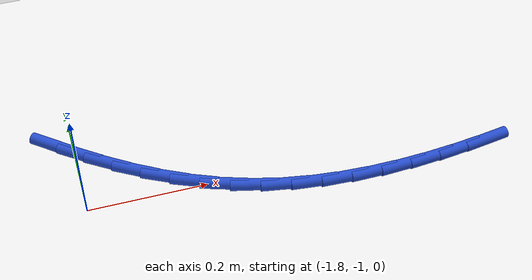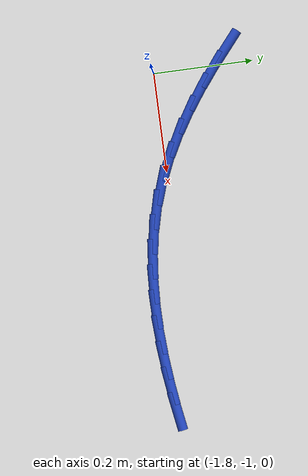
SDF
<sdf version="1.6">
 <world name="default">
  <model name="ground_plane">
   <static>1</static>
   <link name="link">
    <collision name="collision">
     <geometry><plane><normal>0 0 1</normal><size>100 100</size></plane></geometry>
     <surface><friction><ode><mu>100</mu><mu2>50</mu2></ode></friction></surface>
    </collision>
    <visual name="visual">
     <cast_shadows>0</cast_shadows>
     <geometry><plane><normal>0 0 1</normal><size>100 100</size></plane></geometry>
     <material>
      <script><uri>file://media/materials/scripts/gazebo.material</uri><name>Gazebo/WhiteGlow</name></script>
     </material>
    </visual>
   </link>
  </model>
  <model name="line">
   <link name="link_82">
    <pose>-1.831781829788441 -0.8494905931997886 0.01 0 1.57 -0.6984809527759035</pose>
    <collision name="collision">
     <geometry><cylinder><radius>0.01</radius><length>0.08</length></cylinder></geometry>
    </collision>
    <visual name="visual">
     <material>
      <script><name>Gazebo/Blue</name><uri>file://media/materials/scripts/gazebo.material</uri></script>
     </material>
     <geometry><cylinder><radius>0.01</radius><length>0.08</length></cylinder></geometry>
    </visual>
   </link>
   <link name="link_83">
    <pose>-1.7916307202427333 -0.8832052775975702 0.01 0 1.57 -0.6565099664655033</pose>
    <collision name="collision">
     <geometry><cylinder><radius>0.01</radius><length>0.08</length></cylinder></geometry>
    </collision>
    <visual name="visual">
     <material>
      <script><name>Gazebo/Blue</name><uri>file://media/materials/scripts/gazebo.material</uri></script>
     </material>
     <geometry><cylinder><radius>0.01</radius><length>0.08</length></cylinder></geometry>
    </visual>
   </link>
   <link name="link_84">
    <pose>-1.7505037384993731 -0.9148947595519564 0.01 0 1.57 -0.6072561365578161</pose>
    <collision name="collision">
     <geometry><cylinder><radius>0.01</radius><length>0.08</length></cylinder></geometry>
    </collision>
    <visual name="visual">
     <material>
      <script><name>Gazebo/Blue</name><uri>file://media/materials/scripts/gazebo.material</uri></script>
     </material>
     <geometry><cylinder><radius>0.01</radius><length>0.08</length></cylinder></geometry>
    </visual>
   </link>
   <link name="link_85">
    <pose>-1.708353908355808 -0.9441822513384177 0.01 0 1.57 -0.550176859731187</pose>
    <collision name="collision">
     <geometry><cylinder><radius>0.01</radius><length>0.08</length></cylinder></geometry>
    </collision>
    <visual name="visual">
     <material>
      <script><name>Gazebo/Blue</name><uri>file://media/materials/scripts/gazebo.material</uri></script>
     </material>
     <geometry><cylinder><radius>0.01</radius><length>0.08</length></cylinder></geometry>
    </visual>
   </link>
   <link name="link_86">
    <pose>-1.6651342536094864 -0.970690965232425 0.01 0 1.57 -0.4847988268801332</pose>
    <collision name="collision">
     <geometry><cylinder><radius>0.01</radius><length>0.08</length></cylinder></geometry>
    </collision>
    <visual name="visual">
     <material>
      <script><name>Gazebo/Blue</name><uri>file://media/materials/scripts/gazebo.material</uri></script>
     </material>
     <geometry><cylinder><radius>0.01</radius><length>0.08</length></cylinder></geometry>
    </visual>
   </link>
   <link name="link_87">
    <pose>-1.6207977980578594 -0.994044113509448 0.01 0 1.57 -0.4108310831451147</pose>
    <collision name="collision">
     <geometry><cylinder><radius>0.01</radius><length>0.08</length></cylinder></geometry>
    </collision>
    <visual name="visual">
     <material>
      <script><name>Gazebo/Blue</name><uri>file://media/materials/scripts/gazebo.material</uri></script>
     </material>
     <geometry><cylinder><radius>0.01</radius><length>0.08</length></cylinder></geometry>
    </visual>
   </link>
   <link name="link_88">
    <pose>-1.5752975654983747 -1.0138649084449571 0.01 0 1.57 -0.3286503628625703</pose>
    <collision name="collision">
     <geometry><cylinder><radius>0.01</radius><length>0.08</length></cylinder></geometry>
    </collision>
    <visual name="visual">
     <material>
      <script><name>Gazebo/Blue</name><uri>file://media/materials/scripts/gazebo.material</uri></script>
     </material>
     <geometry><cylinder><radius>0.01</radius><length>0.08</length></cylinder></geometry>
    </visual>
   </link>
   <link name="link_89">
    <pose>-1.5285908864637698 -1.0297927072117048 0.01 0 1.57 -0.24585010291655093</pose>
    <collision name="collision">
     <geometry><cylinder><radius>0.01</radius><length>0.08</length></cylinder></geometry>
    </collision>
    <visual name="visual">
     <material>
      <script><name>Gazebo/Blue</name><uri>file://media/materials/scripts/gazebo.material</uri></script>
     </material>
     <geometry><cylinder><radius>0.01</radius><length>0.08</length></cylinder></geometry>
    </visual>
   </link>
   <link name="link_90">
    <pose>-1.4807248989269528 -1.0418035331111415 0.01 0 1.57 -0.1699103546569245</pose>
    <collision name="collision">
     <geometry><cylinder><radius>0.01</radius><length>0.08</length></cylinder></geometry>
    </collision>
    <visual name="visual">
     <material>
      <script><name>Gazebo/Blue</name><uri>file://media/materials/scripts/gazebo.material</uri></script>
     </material>
     <geometry><cylinder><radius>0.01</radius><length>0.08</length></cylinder></geometry>
    </visual>
   </link>
   <link name="link_91">
    <pose>-1.4318316927701347 -1.0501918733757296 0.01 0 1.57 -0.10154453988844427</pose>
    <collision name="collision">
     <geometry><cylinder><radius>0.01</radius><length>0.08</length></cylinder></geometry>
    </collision>
    <visual name="visual">
     <material>
      <script><name>Gazebo/Blue</name><uri>file://media/materials/scripts/gazebo.material</uri></script>
     </material>
     <geometry><cylinder><radius>0.01</radius><length>0.08</length></cylinder></geometry>
    </visual>
   </link>
   <link name="link_92">
    <pose>-1.3820466925640564 -1.055264716169647 0.01 0 1.57 -0.04082174057549442</pose>
    <collision name="collision">
     <geometry><cylinder><radius>0.01</radius><length>0.08</length></cylinder></geometry>
    </collision>
    <visual name="visual">
     <material>
      <script><name>Gazebo/Blue</name><uri>file://media/materials/scripts/gazebo.material</uri></script>
     </material>
     <geometry><cylinder><radius>0.01</radius><length>0.08</length></cylinder></geometry>
    </visual>
   </link>
   <link name="link_93">
    <pose>-1.331505322879458 -1.0573290496570726 0.01 0 1.57 0.012453594383244442</pose>
    <collision name="collision">
     <geometry><cylinder><radius>0.01</radius><length>0.08</length></cylinder></geometry>
    </collision>
    <visual name="visual">
     <material>
      <script><name>Gazebo/Blue</name><uri>file://media/materials/scripts/gazebo.material</uri></script>
     </material>
     <geometry><cylinder><radius>0.01</radius><length>0.08</length></cylinder></geometry>
    </visual>
   </link>
   <link name="link_94">
    <pose>-1.2803430082870784 -1.0566918620021852 0.01 0 1.57 0.05863257795745717</pose>
    <collision name="collision">
     <geometry><cylinder><radius>0.01</radius><length>0.08</length></cylinder></geometry>
    </collision>
    <visual name="visual">
     <material>
      <script><name>Gazebo/Blue</name><uri>file://media/materials/scripts/gazebo.material</uri></script>
     </material>
     <geometry><cylinder><radius>0.01</radius><length>0.08</length></cylinder></geometry>
    </visual>
   </link>
   <link name="link_95">
    <pose>-1.2286951733576592 -1.0536601413691635 0.01 0 1.57 0.09813508215414396</pose>
    <collision name="collision">
     <geometry><cylinder><radius>0.01</radius><length>0.08</length></cylinder></geometry>
    </collision>
    <visual name="visual">
     <material>
      <script><name>Gazebo/Blue</name><uri>file://media/materials/scripts/gazebo.material</uri></script>
     </material>
     <geometry><cylinder><radius>0.01</radius><length>0.08</length></cylinder></geometry>
    </visual>
   </link>
   <link name="link_96">
    <pose>-1.1766972426619404 -1.048540875922186 0.01 0 1.57 0.13138731008881246</pose>
    <collision name="collision">
     <geometry><cylinder><radius>0.01</radius><length>0.08</length></cylinder></geometry>
    </collision>
    <visual name="visual">
     <material>
      <script><name>Gazebo/Blue</name><uri>file://media/materials/scripts/gazebo.material</uri></script>
     </material>
     <geometry><cylinder><radius>0.01</radius><length>0.08</length></cylinder></geometry>
    </visual>
   </link>
   <link name="link_97">
    <pose>-1.1244846407706612 -1.0416410538254306 0.01 0 1.57 0.15878009196708012</pose>
    <collision name="collision">
     <geometry><cylinder><radius>0.01</radius><length>0.08</length></cylinder></geometry>
    </collision>
    <visual name="visual">
     <material>
      <script><name>Gazebo/Blue</name><uri>file://media/materials/scripts/gazebo.material</uri></script>
     </material>
     <geometry><cylinder><radius>0.01</radius><length>0.08</length></cylinder></geometry>
    </visual>
   </link>
  </model>
 </world>
</sdf>
